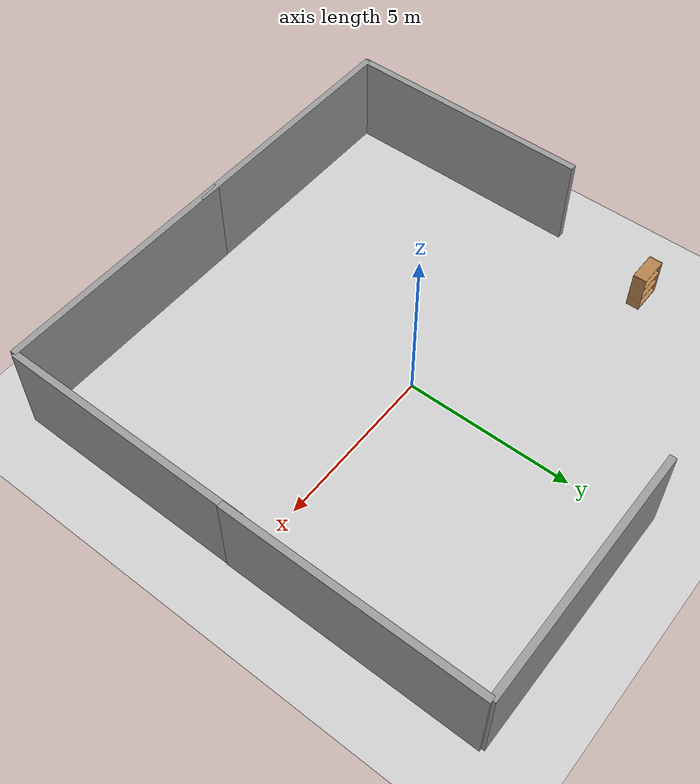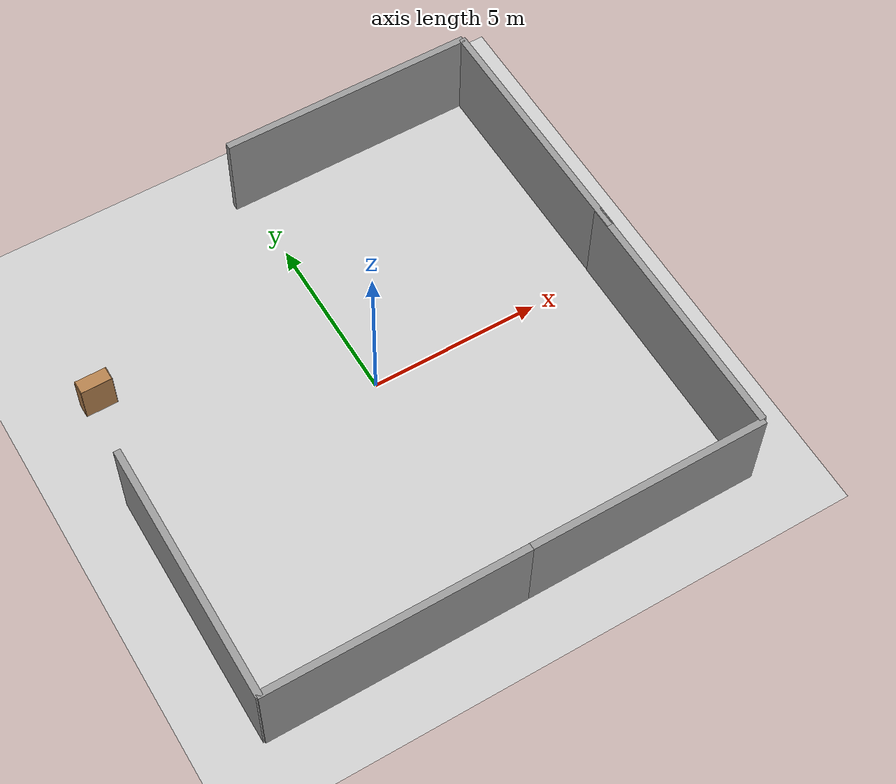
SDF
<sdf version="1.6">
 <world name="GrannyAnnie">
  <light name="sun" type="directional">
   <pose>0 0 10 0 -0 0</pose>
   <diffuse>0.8 0.8 0.8 1</diffuse>
   <specular>0.2 0.2 0.2 1</specular>
   <attenuation>
    <range>1000</range>
    <constant>0.9</constant>
    <linear>0.01</linear>
    <quadratic>0.001</quadratic>
   </attenuation>
   <direction>-0.5 0.1 -0.9</direction>
  </light>
  <model name="ground_plane">
   <static>1</static>
   <link name="link">
    <collision name="collision">
     <geometry><plane><normal>0 0 1</normal><size>100 100</size></plane></geometry>
     <surface><friction><ode><mu>100</mu><mu2>50</mu2></ode></friction></surface>
    </collision>
    <visual name="visual">
     <cast_shadows>0</cast_shadows>
     <geometry><plane><normal>0 0 1</normal><size>100 100</size></plane></geometry>
     <material>
      <script><uri>file://media/materials/scripts/gazebo.material</uri><name>Gazebo/Grey</name></script>
     </material>
    </visual>
    <velocity_decay><linear>0</linear><angular>0</angular></velocity_decay>
   </link>
  </model>
  <physics name="default_physics" default="0" type="ode">
   <max_step_size>0.01</max_step_size>
   <real_time_factor>1</real_time_factor>
   <real_time_update_rate>100</real_time_update_rate>
  </physics>
  <scene><ambient>0.4 0.4 0.4 1</ambient><background>0.7 0.7 0.7 1</background><shadows>1</shadows></scene>
  <spherical_coordinates>
   <surface_model>EARTH_WGS84</surface_model>
   <latitude_deg>0</latitude_deg>
   <longitude_deg>0</longitude_deg>
   <elevation>0</elevation>
   <heading_deg>0</heading_deg>
  </spherical_coordinates>
  <model name="bookshelf">
   <static>1</static>
   <link name="link">
    <inertial><mass>1</mass></inertial>
    <collision name="back">
     <pose>0 0.005 0.6 0 -0 0</pose>
     <geometry><box><size>0.9 0.01 1.2</size></box></geometry>
    </collision>
    <visual name="visual1">
     <pose>0 0.005 0.6 0 -0 0</pose>
     <geometry><box><size>0.9 0.01 1.2</size></box></geometry>
     <material>
      <script><uri>file://media/materials/scripts/gazebo.material</uri><name>Gazebo/Wood</name></script>
     </material>
    </visual>
    <collision name="left_side">
     <pose>0.45 -0.195 0.6 0 -0 0</pose>
     <geometry><box><size>0.02 0.4 1.2</size></box></geometry>
    </collision>
    <visual name="visual2">
     <pose>0.45 -0.195 0.6 0 -0 0</pose>
     <geometry><box><size>0.02 0.4 1.2</size></box></geometry>
     <material>
      <script><uri>file://media/materials/scripts/gazebo.material</uri><name>Gazebo/Wood</name></script>
     </material>
    </visual>
    <collision name="right_side">
     <pose>-0.45 -0.195 0.6 0 -0 0</pose>
     <geometry><box><size>0.02 0.4 1.2</size></box></geometry>
    </collision>
    <visual name="visual3">
     <pose>-0.45 -0.195 0.6 0 -0 0</pose>
     <geometry><box><size>0.02 0.4 1.2</size></box></geometry>
     <material>
      <script><uri>file://media/materials/scripts/gazebo.material</uri><name>Gazebo/Wood</name></script>
     </material>
    </visual>
    <collision name="bottom">
     <pose>0 -0.195 0.03 0 -0 0</pose>
     <geometry><box><size>0.88 0.4 0.06</size></box></geometry>
    </collision>
    <visual name="visual4">
     <pose>0 -0.195 0.03 0 -0 0</pose>
     <geometry><box><size>0.88 0.4 0.06</size></box></geometry>
     <material>
      <script><uri>file://media/materials/scripts/gazebo.material</uri><name>Gazebo/Wood</name></script>
     </material>
    </visual>
    <collision name="top">
     <pose>0 -0.195 1.19 0 -0 0</pose>
     <geometry><box><size>0.88 0.4 0.02</size></box></geometry>
    </collision>
    <visual name="visual5">
     <pose>0 -0.195 1.19 0 -0 0</pose>
     <geometry><box><size>0.88 0.4 0.02</size></box></geometry>
     <material>
      <script><uri>file://media/materials/scripts/gazebo.material</uri><name>Gazebo/Wood</name></script>
     </material>
    </visual>
    <collision name="low_shelf">
     <pose>0 -0.195 0.43 0 -0 0</pose>
     <geometry><box><size>0.88 0.4 0.02</size></box></geometry>
    </collision>
    <visual name="visual6">
     <pose>0 -0.195 0.43 0 -0 0</pose>
     <geometry><box><size>0.88 0.4 0.02</size></box></geometry>
     <material>
      <script><uri>file://media/materials/scripts/gazebo.material</uri><name>Gazebo/Wood</name></script>
     </material>
    </visual>
    <collision name="high_shelf">
     <pose>0 -0.195 0.8 0 -0 0</pose>
     <geometry><box><size>0.88 0.4 0.02</size></box></geometry>
    </collision>
    <visual name="visual7">
     <pose>0 -0.195 0.8 0 -0 0</pose>
     <geometry><box><size>0.88 0.4 0.02</size></box></geometry>
     <material>
      <script><uri>file://media/materials/scripts/gazebo.material</uri><name>Gazebo/Wood</name></script>
     </material>
    </visual>
    <velocity_decay><linear>0</linear><angular>0</angular></velocity_decay>
   </link>
   <pose>-6.62417 3.07498 0 0 -0 3.13796</pose>
  </model>
  <model name="grey_wall_0">
   <static>1</static>
   <link name="link">
    <pose>0 0 1.4 0 -0 0</pose>
    <collision name="collision"><geometry><box><size>7.5 0.2 2.8</size></box></geometry></collision>
    <visual name="visual">
     <cast_shadows>0</cast_shadows>
     <geometry><box><size>7.5 0.2 2.8</size></box></geometry>
     <material>
      <script>
       <uri>model://grey_wall/materials/scripts</uri>
       <uri>model://grey_wall/materials/textures</uri>
       <name>vrc/grey_wall</name>
      </script>
     </material>
    </visual>
    <velocity_decay><linear>0</linear><angular>0</angular></velocity_decay>
   </link>
   <pose>-7.25571 -3.5819 0 0 0 -1.57522</pose>
  </model>
  <model name="grey_wall_1">
   <static>1</static>
   <link name="link">
    <pose>0 0 1.4 0 -0 0</pose>
    <collision name="collision"><geometry><box><size>7.5 0.2 2.8</size></box></geometry></collision>
    <visual name="visual">
     <cast_shadows>0</cast_shadows>
     <geometry><box><size>7.5 0.2 2.8</size></box></geometry>
     <material>
      <script>
       <uri>model://grey_wall/materials/scripts</uri>
       <uri>model://grey_wall/materials/textures</uri>
       <name>vrc/grey_wall</name>
      </script>
     </material>
    </visual>
    <velocity_decay><linear>0</linear><angular>0</angular></velocity_decay>
   </link>
   <pose>3.27943 7.15202 0 0 -0 0</pose>
  </model>
  <model name="grey_wall_2">
   <static>1</static>
   <link name="link">
    <pose>0 0 1.4 0 -0 0</pose>
    <collision name="collision"><geometry><box><size>7.5 0.2 2.8</size></box></geometry></collision>
    <visual name="visual">
     <cast_shadows>0</cast_shadows>
     <geometry><box><size>7.5 0.2 2.8</size></box></geometry>
     <material>
      <script>
       <uri>model://grey_wall/materials/scripts</uri>
       <uri>model://grey_wall/materials/textures</uri>
       <name>vrc/grey_wall</name>
      </script>
     </material>
    </visual>
    <velocity_decay><linear>0</linear><angular>0</angular></velocity_decay>
   </link>
   <pose>-3.57864 -7.27256 0 0 -0 0</pose>
  </model>
  <model name="grey_wall_3">
   <static>1</static>
   <link name="link">
    <pose>0 0 1.4 0 -0 0</pose>
    <collision name="collision"><geometry><box><size>7.5 0.2 2.8</size></box></geometry></collision>
    <visual name="visual">
     <cast_shadows>0</cast_shadows>
     <geometry><box><size>7.5 0.2 2.8</size></box></geometry>
     <material>
      <script>
       <uri>model://grey_wall/materials/scripts</uri>
       <uri>model://grey_wall/materials/textures</uri>
       <name>vrc/grey_wall</name>
      </script>
     </material>
    </visual>
    <velocity_decay><linear>0</linear><angular>0</angular></velocity_decay>
   </link>
   <pose>7.02581 3.41596 0 0 0 -1.566</pose>
  </model>
  <model name="grey_wall_4">
   <static>1</static>
   <link name="link">
    <pose>0 0 1.4 0 -0 0</pose>
    <collision name="collision"><geometry><box><size>7.5 0.2 2.8</size></box></geometry></collision>
    <visual name="visual">
     <cast_shadows>0</cast_shadows>
     <geometry><box><size>7.5 0.2 2.8</size></box></geometry>
     <material>
      <script>
       <uri>model://grey_wall/materials/scripts</uri>
       <uri>model://grey_wall/materials/textures</uri>
       <name>vrc/grey_wall</name>
      </script>
     </material>
    </visual>
    <velocity_decay><linear>0</linear><angular>0</angular></velocity_decay>
   </link>
   <pose>7.03023 -3.4783 0 0 0 -1.5708</pose>
  </model>
  <model name="grey_wall_5">
   <static>1</static>
   <link name="link">
    <pose>0 0 1.4 0 -0 0</pose>
    <collision name="collision"><geometry><box><size>7.5 0.2 2.8</size></box></geometry></collision>
    <visual name="visual">
     <cast_shadows>0</cast_shadows>
     <geometry><box><size>7.5 0.2 2.8</size></box></geometry>
     <material>
      <script>
       <uri>model://grey_wall/materials/scripts</uri>
       <uri>model://grey_wall/materials/textures</uri>
       <name>vrc/grey_wall</name>
      </script>
     </material>
    </visual>
    <velocity_decay><linear>0</linear><angular>0</angular></velocity_decay>
   </link>
   <pose>3.29916 -7.27083 0 0 -0 0</pose>
  </model>
  <gravity>0 0 -9.8</gravity>
  <magnetic_field>6e-06 2.3e-05 -4.2e-05</magnetic_field>
  <atmosphere type="adiabatic"/>
 </world>
</sdf>
